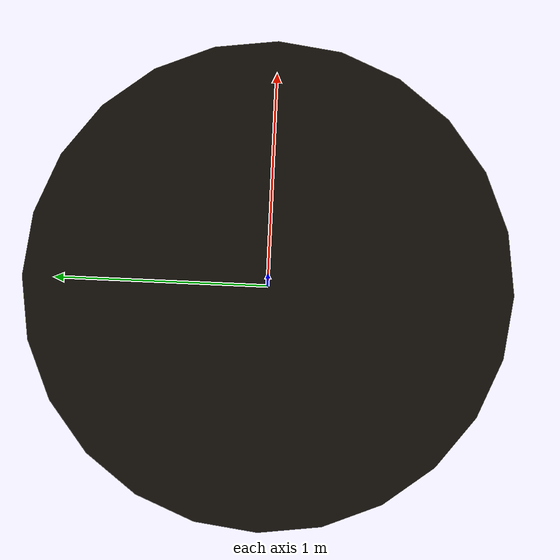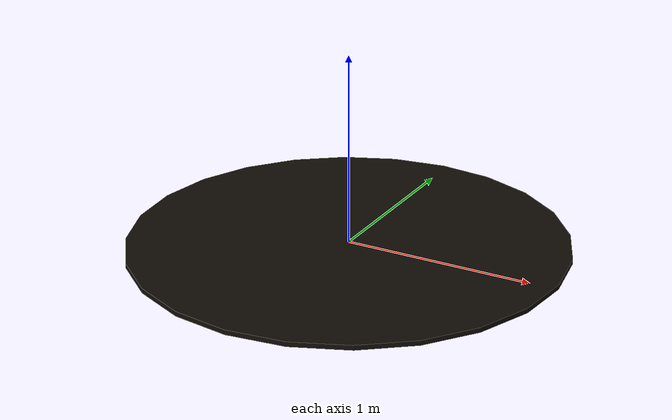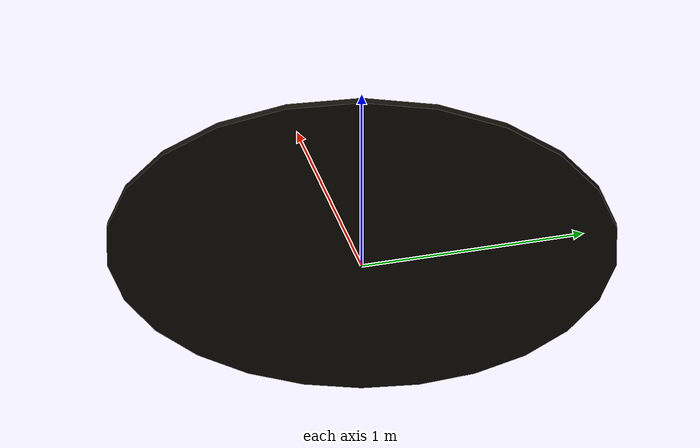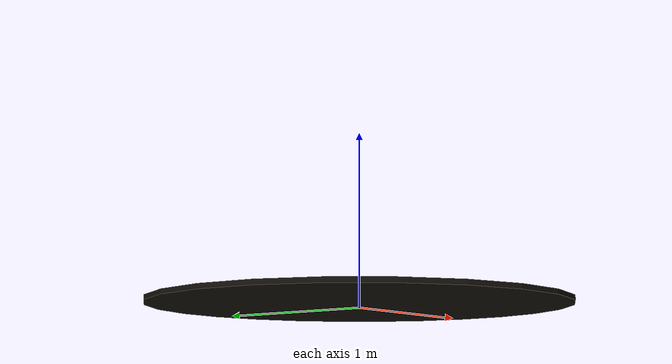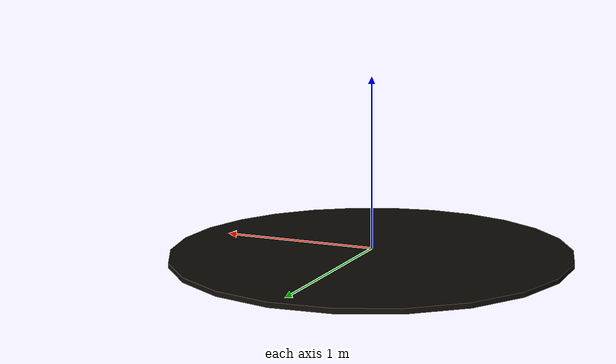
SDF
<?xml version="1.0"?>
<sdf version="1.7">

  <model name="fire_hotspot">
    <static>true</static>

    <link name="fire_link">

      <!-- SCORCHED GROUND -->

      <visual name="burnt_ground">
        <pose>0 0 0.015 0 0 0</pose>

        <geometry>
          <cylinder>
            <radius>1.15</radius>
            <length>0.025</length>
          </cylinder>
        </geometry>

        <material>
          <ambient>0.035 0.025 0.015 1</ambient>
          <diffuse>0.06 0.045 0.025 1</diffuse>
          <roughness>1.0</roughness>
        </material>
      </visual>

      <!-- FIRE GLOW -->

      <light name="fire_light" type="point">
        <pose>0 0 0.55 0 0 0</pose>

        <diffuse>1.0 0.32 0.05 1</diffuse>
        <specular>0.4 0.15 0.02 1</specular>

        <attenuation>
          <range>5</range>
          <constant>0.5</constant>
          <linear>0.15</linear>
          <quadratic>0.05</quadratic>
        </attenuation>
      </light>

      <!-- MAIN FLAME PARTICLES -->

      <particle_emitter name="main_flame" type="box">

        <pose>0 0 0.15 0 0 0</pose>

        <emitting>true</emitting>

        <size>5.0 1.2 0.10</size>

        <particle_size>
          0.18 0.32 0.05
        </particle_size>

        <rate>45</rate>

        <lifetime>0.75</lifetime>

        <min_velocity>0.45</min_velocity>
        <max_velocity>1.20</max_velocity>

        <scale_rate>0.35</scale_rate>

        <color_start>
          1.0 0.65 0.05 0.95
        </color_start>

        <color_end>
          0.9 0.04 0.01 0.05
        </color_end>

      </particle_emitter>

      <!-- SMALL SIDE FLAME -->

      <particle_emitter name="side_flame_1" type="box">

        <pose>0.38 0.15 0.12 0 0 0</pose>

        <emitting>true</emitting>

        <size>0.31 0.38 0.08</size>

        <particle_size>
          0.12 0.24 0.04
        </particle_size>

        <rate>25</rate>

        <lifetime>0.55</lifetime>

        <min_velocity>0.35</min_velocity>
        <max_velocity>0.90</max_velocity>

        <scale_rate>0.25</scale_rate>

        <color_start>
          1.0 0.75 0.08 0.9
        </color_start>

        <color_end>
          1.0 0.05 0.0 0.02
        </color_end>

      </particle_emitter>

      <!-- SECOND SIDE FLAME -->

      <particle_emitter name="side_flame_2" type="box">

        <pose>-0.32 -0.18 0.12 0 0 0</pose>

        <emitting>true</emitting>

        <size>0.35 0.28 0.08</size>

        <particle_size>
          0.11 0.22 0.04
        </particle_size>

        <rate>22</rate>

        <lifetime>0.50</lifetime>

        <min_velocity>0.30</min_velocity>
        <max_velocity>0.85</max_velocity>

        <scale_rate>0.25</scale_rate>

        <color_start>
          1.0 0.55 0.03 0.9
        </color_start>

        <color_end>
          0.8 0.03 0.0 0.02
        </color_end>

      </particle_emitter>

      <!-- SMOKE -->

      <particle_emitter name="smoke" type="box">

        <pose>0 0 0.65 0 0 0</pose>

        <emitting>true</emitting>

        <size>0.50 0.50 0.10</size>

        <particle_size>
          0.35 0.35 0.10
        </particle_size>

        <rate>12</rate>

        <lifetime>3.0</lifetime>

        <min_velocity>0.25</min_velocity>
        <max_velocity>0.60</max_velocity>

        <scale_rate>0.45</scale_rate>

        <color_start>
          0.12 0.12 0.12 0.55
        </color_start>

        <color_end>
          0.35 0.35 0.35 0.0
        </color_end>

      </particle_emitter>

    </link>
  </model>

</sdf>
